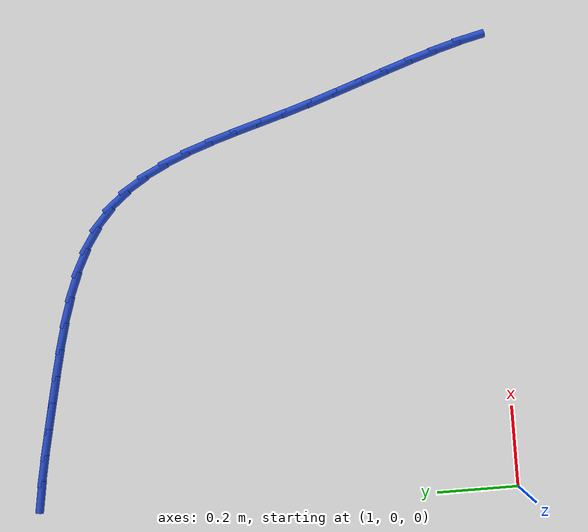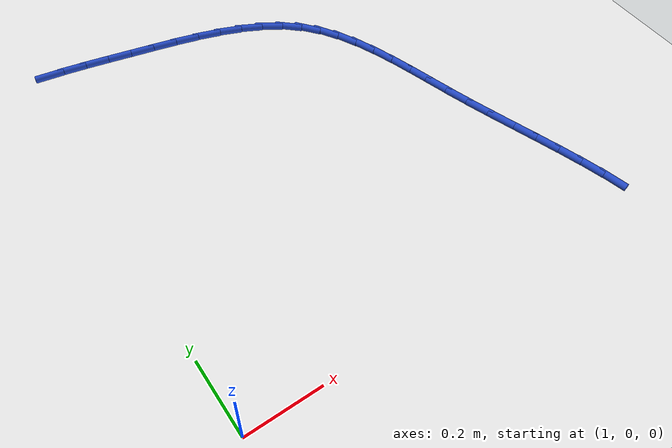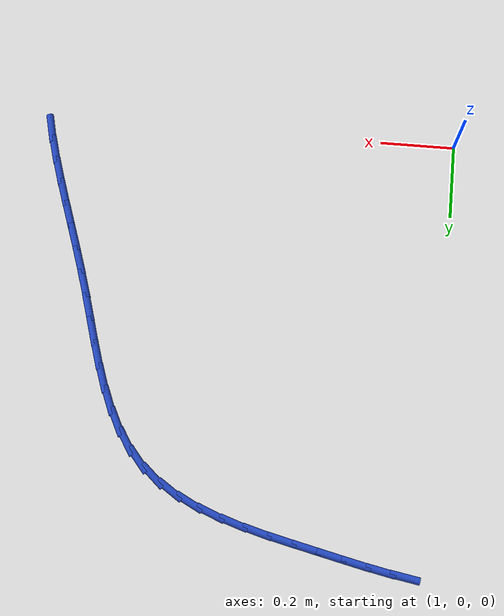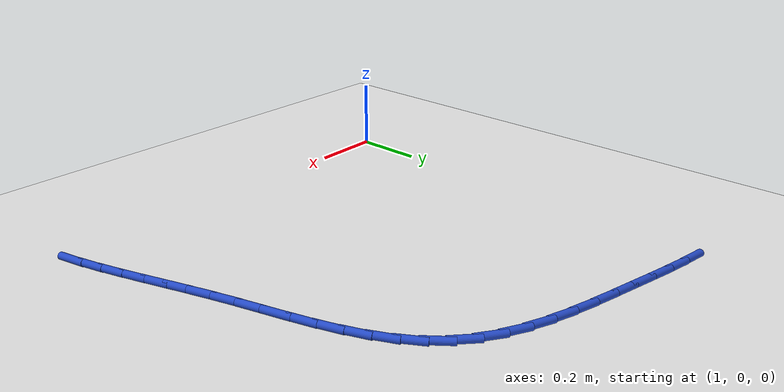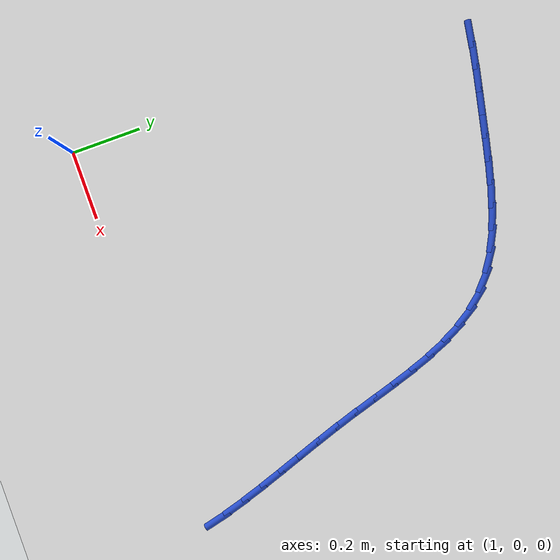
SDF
<sdf version="1.6">
 <world name="default">
  <model name="ground_plane">
   <static>1</static>
   <link name="link">
    <collision name="collision">
     <geometry><plane><normal>0 0 1</normal><size>100 100</size></plane></geometry>
     <surface><friction><ode><mu>100</mu><mu2>50</mu2></ode></friction></surface>
    </collision>
    <visual name="visual">
     <cast_shadows>0</cast_shadows>
     <geometry><plane><normal>0 0 1</normal><size>100 100</size></plane></geometry>
     <material>
      <script><uri>file://media/materials/scripts/gazebo.material</uri><name>Gazebo/WhiteGlow</name></script>
     </material>
    </visual>
   </link>
  </model>
  <model name="line">
   <link name="link_28">
    <pose>1.070609975319415 1.1728560750412316 0.01 0 1.57 -0.17122220501394025</pose>
    <collision name="collision">
     <geometry><cylinder><radius>0.01</radius><length>0.08</length></cylinder></geometry>
    </collision>
    <visual name="visual">
     <material>
      <script><name>Gazebo/Blue</name><uri>file://media/materials/scripts/gazebo.material</uri></script>
     </material>
     <geometry><cylinder><radius>0.01</radius><length>0.08</length></cylinder></geometry>
    </visual>
   </link>
   <link name="link_29">
    <pose>1.1329443646289425 1.162077505076093 0.01 0 1.57 -0.20253268776508465</pose>
    <collision name="collision">
     <geometry><cylinder><radius>0.01</radius><length>0.08</length></cylinder></geometry>
    </collision>
    <visual name="visual">
     <material>
      <script><name>Gazebo/Blue</name><uri>file://media/materials/scripts/gazebo.material</uri></script>
     </material>
     <geometry><cylinder><radius>0.01</radius><length>0.08</length></cylinder></geometry>
    </visual>
   </link>
   <link name="link_30">
    <pose>1.1961423435198446 1.1490999167168585 0.01 0 1.57 -0.21945995417258904</pose>
    <collision name="collision">
     <geometry><cylinder><radius>0.01</radius><length>0.08</length></cylinder></geometry>
    </collision>
    <visual name="visual">
     <material>
      <script><name>Gazebo/Blue</name><uri>file://media/materials/scripts/gazebo.material</uri></script>
     </material>
     <geometry><cylinder><radius>0.01</radius><length>0.08</length></cylinder></geometry>
    </visual>
   </link>
   <link name="link_31">
    <pose>1.2601097597115312 1.134831828533655 0.01 0 1.57 -0.22304661355714694</pose>
    <collision name="collision">
     <geometry><cylinder><radius>0.01</radius><length>0.08</length></cylinder></geometry>
    </collision>
    <visual name="visual">
     <material>
      <script><name>Gazebo/Blue</name><uri>file://media/materials/scripts/gazebo.material</uri></script>
     </material>
     <geometry><cylinder><radius>0.01</radius><length>0.08</length></cylinder></geometry>
    </visual>
   </link>
   <link name="link_32">
    <pose>1.3247473902805744 1.1201706840824428 0.01 0 1.57 -0.22425022562651575</pose>
    <collision name="collision">
     <geometry><cylinder><radius>0.01</radius><length>0.08</length></cylinder></geometry>
    </collision>
    <visual name="visual">
     <material>
      <script><name>Gazebo/Blue</name><uri>file://media/materials/scripts/gazebo.material</uri></script>
     </material>
     <geometry><cylinder><radius>0.01</radius><length>0.08</length></cylinder></geometry>
    </visual>
   </link>
   <link name="link_33">
    <pose>1.3896590065754013 1.1053652236375868 0.01 0 1.57 -0.23932754840772955</pose>
    <collision name="collision">
     <geometry><cylinder><radius>0.01</radius><length>0.08</length></cylinder></geometry>
    </collision>
    <visual name="visual">
     <material>
      <script><name>Gazebo/Blue</name><uri>file://media/materials/scripts/gazebo.material</uri></script>
     </material>
     <geometry><cylinder><radius>0.01</radius><length>0.08</length></cylinder></geometry>
    </visual>
   </link>
   <link name="link_34">
    <pose>1.4539921324773115 1.0896676773017815 0.01 0 1.57 -0.27035647542810287</pose>
    <collision name="collision">
     <geometry><cylinder><radius>0.01</radius><length>0.08</length></cylinder></geometry>
    </collision>
    <visual name="visual">
     <material>
      <script><name>Gazebo/Blue</name><uri>file://media/materials/scripts/gazebo.material</uri></script>
     </material>
     <geometry><cylinder><radius>0.01</radius><length>0.08</length></cylinder></geometry>
    </visual>
   </link>
   <link name="link_35">
    <pose>1.516855521400973 1.0722455948953225 0.01 0 1.57 -0.3189454110695309</pose>
    <collision name="collision">
     <geometry><cylinder><radius>0.01</radius><length>0.08</length></cylinder></geometry>
    </collision>
    <visual name="visual">
     <material>
      <script><name>Gazebo/Blue</name><uri>file://media/materials/scripts/gazebo.material</uri></script>
     </material>
     <geometry><cylinder><radius>0.01</radius><length>0.08</length></cylinder></geometry>
    </visual>
   </link>
   <link name="link_36">
    <pose>1.577357926761052 1.0522665262385031 0.01 0 1.57 -0.38754007558635456</pose>
    <collision name="collision">
     <geometry><cylinder><radius>0.01</radius><length>0.08</length></cylinder></geometry>
    </collision>
    <visual name="visual">
     <material>
      <script><name>Gazebo/Blue</name><uri>file://media/materials/scripts/gazebo.material</uri></script>
     </material>
     <geometry><cylinder><radius>0.01</radius><length>0.08</length></cylinder></geometry>
    </visual>
   </link>
   <link name="link_37">
    <pose>1.6346081019722158 1.0288980211516179 0.01 0 1.57 -0.47914731077616296</pose>
    <collision name="collision">
     <geometry><cylinder><radius>0.01</radius><length>0.08</length></cylinder></geometry>
    </collision>
    <visual name="visual">
     <material>
      <script><name>Gazebo/Blue</name><uri>file://media/materials/scripts/gazebo.material</uri></script>
     </material>
     <geometry><cylinder><radius>0.01</radius><length>0.08</length></cylinder></geometry>
    </visual>
   </link>
   <link name="link_38">
    <pose>1.6877148004491314 1.0013076294549612 0.01 0 1.57 -0.5965474511865179</pose>
    <collision name="collision">
     <geometry><cylinder><radius>0.01</radius><length>0.08</length></cylinder></geometry>
    </collision>
    <visual name="visual">
     <material>
      <script><name>Gazebo/Blue</name><uri>file://media/materials/scripts/gazebo.material</uri></script>
     </material>
     <geometry><cylinder><radius>0.01</radius><length>0.08</length></cylinder></geometry>
    </visual>
   </link>
   <link name="link_39">
    <pose>1.735786775606466 0.9686629009688272 0.01 0 1.57 -0.7404104865167471</pose>
    <collision name="collision">
     <geometry><cylinder><radius>0.01</radius><length>0.08</length></cylinder></geometry>
    </collision>
    <visual name="visual">
     <material>
      <script><name>Gazebo/Blue</name><uri>file://media/materials/scripts/gazebo.material</uri></script>
     </material>
     <geometry><cylinder><radius>0.01</radius><length>0.08</length></cylinder></geometry>
    </visual>
   </link>
   <link name="link_40">
    <pose>1.7779419299058998 0.9301397277733829 0.01 0 1.57 -0.8918549173014226</pose>
    <collision name="collision">
     <geometry><cylinder><radius>0.01</radius><length>0.08</length></cylinder></geometry>
    </collision>
    <visual name="visual">
     <material>
      <script><name>Gazebo/Blue</name><uri>file://media/materials/scripts/gazebo.material</uri></script>
     </material>
     <geometry><cylinder><radius>0.01</radius><length>0.08</length></cylinder></geometry>
    </visual>
   </link>
   <link name="link_41">
    <pose>1.8139531808282559 0.8855112560127452 0.01 0 1.57 -1.0196031578394538</pose>
    <collision name="collision">
     <geometry><cylinder><radius>0.01</radius><length>0.08</length></cylinder></geometry>
    </collision>
    <visual name="visual">
     <material>
      <script><name>Gazebo/Blue</name><uri>file://media/materials/scripts/gazebo.material</uri></script>
     </material>
     <geometry><cylinder><radius>0.01</radius><length>0.08</length></cylinder></geometry>
    </visual>
   </link>
   <link name="link_42">
    <pose>1.844674920071208 0.8355367387937647 0.01 0 1.57 -1.1196610503386217</pose>
    <collision name="collision">
     <geometry><cylinder><radius>0.01</radius><length>0.08</length></cylinder></geometry>
    </collision>
    <visual name="visual">
     <material>
      <script><name>Gazebo/Blue</name><uri>file://media/materials/scripts/gazebo.material</uri></script>
     </material>
     <geometry><cylinder><radius>0.01</radius><length>0.08</length></cylinder></geometry>
    </visual>
   </link>
   <link name="link_43">
    <pose>1.8710627614820787 0.7810677253363161 0.01 0 1.57 -1.193784313037521</pose>
    <collision name="collision">
     <geometry><cylinder><radius>0.01</radius><length>0.08</length></cylinder></geometry>
    </collision>
    <visual name="visual">
     <material>
      <script><name>Gazebo/Blue</name><uri>file://media/materials/scripts/gazebo.material</uri></script>
     </material>
     <geometry><cylinder><radius>0.01</radius><length>0.08</length></cylinder></geometry>
    </visual>
   </link>
   <link name="link_44">
    <pose>1.894072318908189 0.722955764860274 0.01 0 1.57 -1.2448287959094857</pose>
    <collision name="collision">
     <geometry><cylinder><radius>0.01</radius><length>0.08</length></cylinder></geometry>
    </collision>
    <visual name="visual">
     <material>
      <script><name>Gazebo/Blue</name><uri>file://media/materials/scripts/gazebo.material</uri></script>
     </material>
     <geometry><cylinder><radius>0.01</radius><length>0.08</length></cylinder></geometry>
    </visual>
   </link>
   <link name="link_45">
    <pose>1.9146592061968604 0.6620524065855129 0.01 0 1.57 -1.275448151751995</pose>
    <collision name="collision">
     <geometry><cylinder><radius>0.01</radius><length>0.08</length></cylinder></geometry>
    </collision>
    <visual name="visual">
     <material>
      <script><name>Gazebo/Blue</name><uri>file://media/materials/scripts/gazebo.material</uri></script>
     </material>
     <geometry><cylinder><radius>0.01</radius><length>0.08</length></cylinder></geometry>
    </visual>
   </link>
   <link name="link_46">
    <pose>1.9337790371954158 0.5992091997319073 0.01 0 1.57 -1.2875544282351</pose>
    <collision name="collision">
     <geometry><cylinder><radius>0.01</radius><length>0.08</length></cylinder></geometry>
    </collision>
    <visual name="visual">
     <material>
      <script><name>Gazebo/Blue</name><uri>file://media/materials/scripts/gazebo.material</uri></script>
     </material>
     <geometry><cylinder><radius>0.01</radius><length>0.08</length></cylinder></geometry>
    </visual>
   </link>
   <link name="link_47">
    <pose>1.9523874257511755 0.5352776935193317 0.01 0 1.57 -1.2821716018485865</pose>
    <collision name="collision">
     <geometry><cylinder><radius>0.01</radius><length>0.08</length></cylinder></geometry>
    </collision>
    <visual name="visual">
     <material>
      <script><name>Gazebo/Blue</name><uri>file://media/materials/scripts/gazebo.material</uri></script>
     </material>
     <geometry><cylinder><radius>0.01</radius><length>0.08</length></cylinder></geometry>
    </visual>
   </link>
   <link name="link_48">
    <pose>1.9714399857114626 0.4711094371676607 0.01 0 1.57 -1.2632610994920164</pose>
    <collision name="collision">
     <geometry><cylinder><radius>0.01</radius><length>0.08</length></cylinder></geometry>
    </collision>
    <visual name="visual">
     <material>
      <script><name>Gazebo/Blue</name><uri>file://media/materials/scripts/gazebo.material</uri></script>
     </material>
     <geometry><cylinder><radius>0.01</radius><length>0.08</length></cylinder></geometry>
    </visual>
   </link>
   <link name="link_49">
    <pose>1.9916660505159134 0.40742775237636664 0.01 0 1.57 -1.2479159020804984</pose>
    <collision name="collision">
     <geometry><cylinder><radius>0.01</radius><length>0.08</length></cylinder></geometry>
    </collision>
    <visual name="visual">
     <material>
      <script><name>Gazebo/Blue</name><uri>file://media/materials/scripts/gazebo.material</uri></script>
     </material>
     <geometry><cylinder><radius>0.01</radius><length>0.08</length></cylinder></geometry>
    </visual>
   </link>
   <link name="link_50">
    <pose>2.012763924993011 0.3443717023860258 0.01 0 1.57 -1.2410658649444517</pose>
    <collision name="collision">
     <geometry><cylinder><radius>0.01</radius><length>0.08</length></cylinder></geometry>
    </collision>
    <visual name="visual">
     <material>
      <script><name>Gazebo/Blue</name><uri>file://media/materials/scripts/gazebo.material</uri></script>
     </material>
     <geometry><cylinder><radius>0.01</radius><length>0.08</length></cylinder></geometry>
    </visual>
   </link>
   <link name="link_51">
    <pose>2.0341384210614097 0.28191403525125586 0.01 0 1.57 -1.2428480727153908</pose>
    <collision name="collision">
     <geometry><cylinder><radius>0.01</radius><length>0.08</length></cylinder></geometry>
    </collision>
    <visual name="visual">
     <material>
      <script><name>Gazebo/Blue</name><uri>file://media/materials/scripts/gazebo.material</uri></script>
     </material>
     <geometry><cylinder><radius>0.01</radius><length>0.08</length></cylinder></geometry>
    </visual>
   </link>
   <link name="link_52">
    <pose>2.0551943295587485 0.22002748708058364 0.01 0 1.57 -1.2535339479178147</pose>
    <collision name="collision">
     <geometry><cylinder><radius>0.01</radius><length>0.08</length></cylinder></geometry>
    </collision>
    <visual name="visual">
     <material>
      <script><name>Gazebo/Blue</name><uri>file://media/materials/scripts/gazebo.material</uri></script>
     </material>
     <geometry><cylinder><radius>0.01</radius><length>0.08</length></cylinder></geometry>
    </visual>
   </link>
   <link name="link_53">
    <pose>2.0753364413226674 0.15868479398253646 0.01 0 1.57 -1.2735386593920874</pose>
    <collision name="collision">
     <geometry><cylinder><radius>0.01</radius><length>0.08</length></cylinder></geometry>
    </collision>
    <visual name="visual">
     <material>
      <script><name>Gazebo/Blue</name><uri>file://media/materials/scripts/gazebo.material</uri></script>
     </material>
     <geometry><cylinder><radius>0.01</radius><length>0.08</length></cylinder></geometry>
    </visual>
   </link>
   <link name="link_54">
    <pose>2.0939695471908073 0.09785869206564136 0.01 0 1.57 -1.3034122369136718</pose>
    <collision name="collision">
     <geometry><cylinder><radius>0.01</radius><length>0.08</length></cylinder></geometry>
    </collision>
    <visual name="visual">
     <material>
      <script><name>Gazebo/Blue</name><uri>file://media/materials/scripts/gazebo.material</uri></script>
     </material>
     <geometry><cylinder><radius>0.01</radius><length>0.08</length></cylinder></geometry>
    </visual>
   </link>
   <link name="link_55">
    <pose>2.1104984380008065 0.03752191743842549 0.01 0 1.57 -1.3438036260794093</pose>
    <collision name="collision">
     <geometry><cylinder><radius>0.01</radius><length>0.08</length></cylinder></geometry>
    </collision>
    <visual name="visual">
     <material>
      <script><name>Gazebo/Blue</name><uri>file://media/materials/scripts/gazebo.material</uri></script>
     </material>
     <geometry><cylinder><radius>0.01</radius><length>0.08</length></cylinder></geometry>
    </visual>
   </link>
  </model>
 </world>
</sdf>
